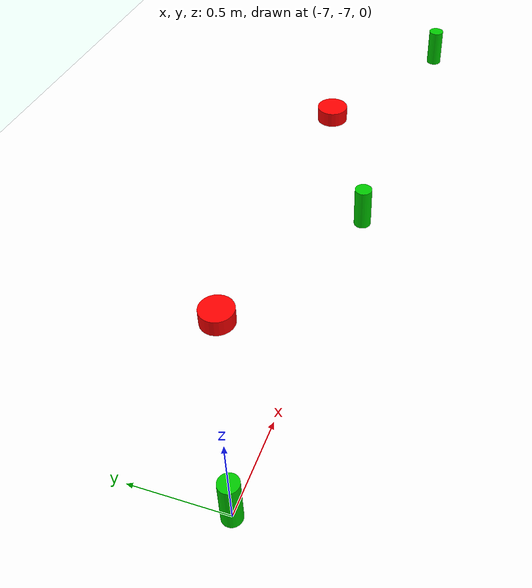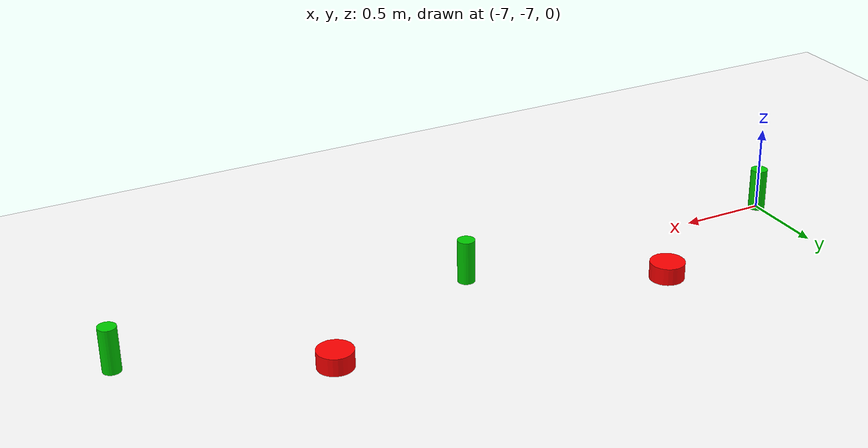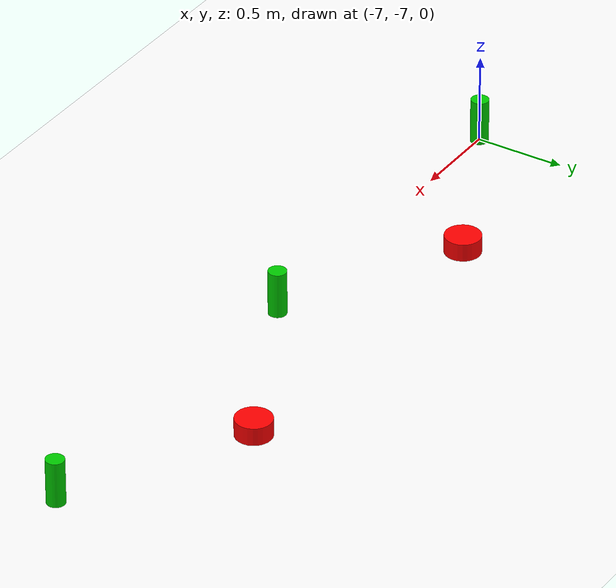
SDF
<sdf version="1.8">
 <world name="farm_world">
  <physics name="1ms" type="ignored">
   <max_step_size>0.001</max_step_size>
   <real_time_factor>1.0</real_time_factor>
  </physics>
  <plugin filename="gz-sim-physics-system" name="gz::sim::systems::Physics"/>
  <plugin filename="gz-sim-user-commands-system" name="gz::sim::systems::UserCommands"/>
  <plugin filename="gz-sim-scene-broadcaster-system" name="gz::sim::systems::SceneBroadcaster"/>
  <light type="directional" name="sun">
   <pose>0 0 20 0 0 0</pose>
   <diffuse>1.0 1.0 1.0 1</diffuse>
   <specular>0.5 0.5 0.5 1</specular>
   <attenuation>
    <range>1000</range>
    <constant>0.9</constant>
    <linear>0.01</linear>
    <quadratic>0.001</quadratic>
   </attenuation>
   <direction>-0.5 0.1 -0.9</direction>
  </light>
  <model name="ground_plane">
   <static>true</static>
   <pose>0 0 0 0 0 1.5708</pose>
   <link name="link">
    <collision name="collision">
     <geometry><plane><normal>0 0 1</normal><size>20 20</size></plane></geometry>
    </collision>
    <visual name="visual">
     <geometry><plane><normal>0 0 1</normal><size>20 20</size></plane></geometry>
     <material>
      <ambient>1 1 1 1</ambient>
      <diffuse>1 1 1 1</diffuse>
      <specular>0 0 0 1</specular>
      <pbr><metal><albedo_map>field.png</albedo_map></metal></pbr>
     </material>
    </visual>
   </link>
  </model>
  <model name="crop_r1_1">
   <static>true</static>
   <pose>-7 -7 0.1 0 0 0</pose>
   <link name="l">
    <visual name="v">
     <geometry><cylinder><radius>0.05</radius><length>0.3</length></cylinder></geometry>
     <material><ambient>0 0.5 0 1</ambient><diffuse>0 0.8 0 1</diffuse></material>
    </visual>
   </link>
  </model>
  <model name="crop_r1_2">
   <static>true</static>
   <pose>-5 -7 0.1 0 0 0</pose>
   <link name="l">
    <visual name="v">
     <geometry><cylinder><radius>0.05</radius><length>0.3</length></cylinder></geometry>
     <material><ambient>0 0.5 0 1</ambient><diffuse>0 0.8 0 1</diffuse></material>
    </visual>
   </link>
  </model>
  <model name="crop_r1_3">
   <static>true</static>
   <pose>-3 -7 0.1 0 0 0</pose>
   <link name="l">
    <visual name="v">
     <geometry><cylinder><radius>0.05</radius><length>0.3</length></cylinder></geometry>
     <material><ambient>0 0.5 0 1</ambient><diffuse>0 0.8 0 1</diffuse></material>
    </visual>
   </link>
  </model>
  <model name="weed_1">
   <static>true</static>
   <pose>-6 -6.5 0.05 0 0 0</pose>
   <link name="l">
    <visual name="v">
     <geometry><cylinder><radius>0.1</radius><length>0.1</length></cylinder></geometry>
     <material><ambient>1 0 0 1</ambient><diffuse>1 0 0 1</diffuse></material>
    </visual>
   </link>
  </model>
  <model name="weed_2">
   <static>true</static>
   <pose>-4 -6.5 0.05 0 0 0</pose>
   <link name="l">
    <visual name="v">
     <geometry><cylinder><radius>0.1</radius><length>0.1</length></cylinder></geometry>
     <material><ambient>1 0 0 1</ambient><diffuse>1 0 0 1</diffuse></material>
    </visual>
   </link>
  </model>
 </world>
</sdf>
